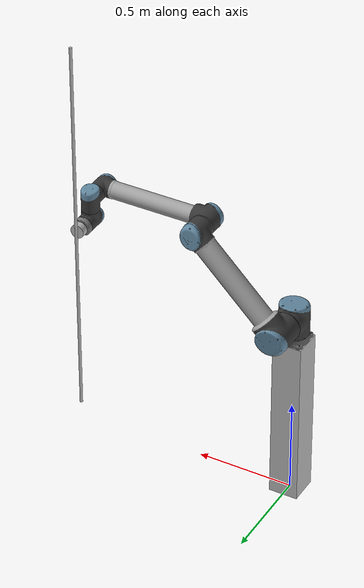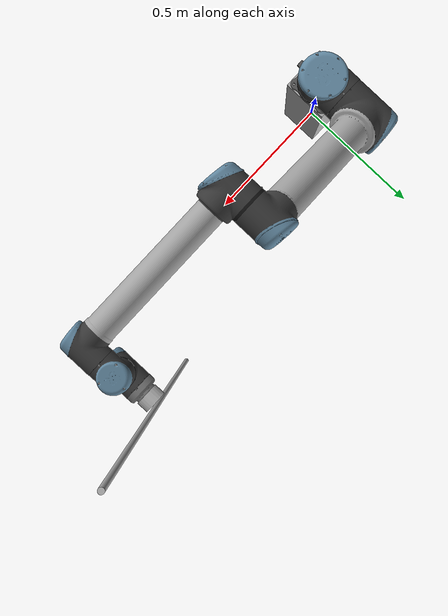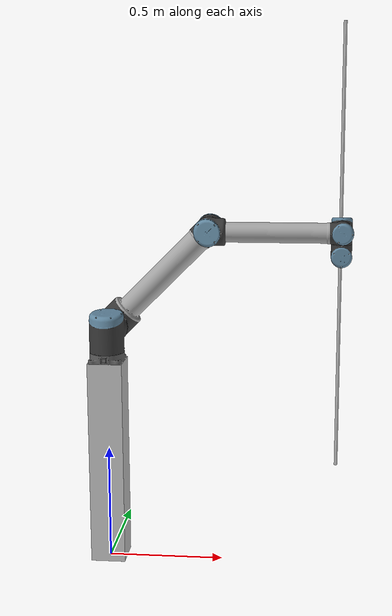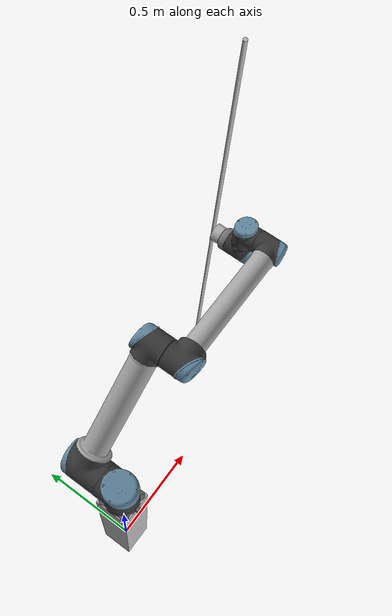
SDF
<sdf version='1.6'>
  <model name='ur10'>
    <link name='base_link'>
      <pose frame=''>0 0 0 0 -0 0</pose>
      <inertial>
        <pose frame=''>0 0 0.81 0 -0 0</pose>
        <mass>5</mass>
        <inertia>
          <ixx>1.16811</ixx>
          <ixy>0</ixy>
          <ixz>0</ixz>
          <iyy>1.16811</iyy>
          <iyz>0</iyz>
          <izz>1.01125</izz>
        </inertia>
      </inertial>
      <collision name='base_link_fixed_joint_lump__pedistal_link_collision'>
        <pose frame=''>0 0 0.45 0 -0 0</pose>
        <geometry>
          <box>
            <size>0.15 0.15 0.9</size>
          </box>
        </geometry>
      </collision>
      <collision name='base_link_fixed_joint_lump__ur10_base_link_collision_1'>
        <pose frame=''>0 0 0.9 0 -0 0</pose>
        <geometry>
          <mesh>
            <scale>1 1 1</scale>
            <uri>model://ur_description/meshes/ur10/collision/base.stl</uri>
          </mesh>
        </geometry>
        <surface>
          <contact>
            <ode/>
          </contact>
          <friction>
            <ode/>
          </friction>
        </surface>
      </collision>
      <visual name='base_link_fixed_joint_lump__pedistal_link_visual'>
        <pose frame=''>0 0 0.45 0 -0 0</pose>
        <geometry>
          <box>
            <size>0.15 0.15 0.9</size>
          </box>
        </geometry>
      </visual>
      <visual name='base_link_fixed_joint_lump__ur10_base_link_visual_1'>
        <pose frame=''>0 0 0.9 0 -0 0</pose>
        <geometry>
          <mesh>
            <scale>1 1 1</scale>
            <uri>model://ur_description/meshes/ur10/visual/base.dae</uri>
          </mesh>
        </geometry>
        <material>
          <script>
            <uri>__default__</uri>
            <name>__default__</name>
          </script>
        </material>
      </visual>
      <velocity_decay/>
      <gravity>1</gravity>
      <velocity_decay/>
      <self_collide>0</self_collide>
    </link>
    <joint name='world_joint' type='revolute'>
      <child>base_link</child>
      <parent>world</parent>
      <axis>
        <limit>
          <lower>0</lower>
          <upper>0</upper>
        </limit>
        <dynamics>
          <damping>0</damping>
          <friction>0</friction>
          <spring_reference>0</spring_reference>
          <spring_stiffness>0</spring_stiffness>
        </dynamics>
        <use_parent_model_frame>1</use_parent_model_frame>
        <xyz>0 0 1</xyz>
      </axis>
    </joint>
    <link name='shoulder_link'>
      <pose frame=''>0 0 1.0273 0 -0 0</pose>
      <inertial>
        <pose frame=''>0 0 0 0 -0 0</pose>
        <mass>7.778</mass>
        <inertia>
          <ixx>0.0314743</ixx>
          <ixy>0</ixy>
          <ixz>0</ixz>
          <iyy>0.0314743</iyy>
          <iyz>0</iyz>
          <izz>0.0218756</izz>
        </inertia>
      </inertial>
      <collision name='shoulder_link_collision'>
        <pose frame=''>0 0 0 0 -0 0</pose>
        <geometry>
          <mesh>
            <scale>1 1 1</scale>
            <uri>model://ur_description/meshes/ur10/collision/shoulder.stl</uri>
          </mesh>
        </geometry>
        <surface>
          <contact>
            <ode/>
          </contact>
          <friction>
            <ode/>
          </friction>
        </surface>
      </collision>
      <visual name='shoulder_link_visual'>
        <pose frame=''>0 0 0 0 -0 0</pose>
        <geometry>
          <mesh>
            <scale>1 1 1</scale>
            <uri>model://ur_description/meshes/ur10/visual/shoulder.dae</uri>
          </mesh>
        </geometry>
        <material>
          <script>
            <uri>__default__</uri>
            <name>__default__</name>
          </script>
        </material>
      </visual>
      <gravity>1</gravity>
      <velocity_decay/>
      <self_collide>0</self_collide>
    </link>
    <joint name='shoulder_pan_joint' type='revolute'>
      <child>shoulder_link</child>
      <parent>base_link</parent>
      <axis>
        <xyz>0 0 1</xyz>
        <limit>
          <lower>-6.28319</lower>
          <upper>6.28319</upper>
          <effort>330</effort>
          <velocity>2.16</velocity>
        </limit>
        <dynamics>
          <damping>0</damping>
          <friction>0</friction>
          <spring_reference>0</spring_reference>
          <spring_stiffness>0</spring_stiffness>
        </dynamics>
        <use_parent_model_frame>1</use_parent_model_frame>
      </axis>
    </joint>
    <link name='upper_arm_link'>
      <pose frame=''>0 0.220941 1.0273 0 0.785398 0</pose>
      <inertial>
        <pose frame=''>0 0 0.306 0 -0 0</pose>
        <mass>12.93</mass>
        <inertia>
          <ixx>0.421754</ixx>
          <ixy>0</ixy>
          <ixz>0</ixz>
          <iyy>0.421754</iyy>
          <iyz>0</iyz>
          <izz>0.0363656</izz>
        </inertia>
      </inertial>
      <collision name='upper_arm_link_collision'>
        <pose frame=''>0 0 0 0 -0 0</pose>
        <geometry>
          <mesh>
            <scale>1 1 1</scale>
            <uri>model://ur_description/meshes/ur10/collision/upperarm.stl</uri>
          </mesh>
        </geometry>
        <surface>
          <contact>
            <ode/>
          </contact>
          <friction>
            <ode/>
          </friction>
        </surface>
      </collision>
      <visual name='upper_arm_link_visual'>
        <pose frame=''>0 0 0 0 -0 0</pose>
        <geometry>
          <mesh>
            <scale>1 1 1</scale>
            <uri>model://ur_description/meshes/ur10/visual/upperarm.dae</uri>
          </mesh>
        </geometry>
        <material>
          <script>
            <uri>__default__</uri>
            <name>__default__</name>
          </script>
        </material>
      </visual>
      <gravity>1</gravity>
      <velocity_decay/>
      <self_collide>0</self_collide>
    </link>
    <joint name='shoulder_lift_joint' type='revolute'>
      <child>upper_arm_link</child>
      <parent>shoulder_link</parent>
      <axis>
        <xyz>0 1 0</xyz>
        <limit>
          <lower>-6.28319</lower>
          <upper>6.28319</upper>
          <effort>330</effort>
          <velocity>2.16</velocity>
        </limit>
        <dynamics>
          <damping>0</damping>
          <friction>0</friction>
          <spring_reference>0</spring_reference>
          <spring_stiffness>0</spring_stiffness>
        </dynamics>
        <use_parent_model_frame>1</use_parent_model_frame>
      </axis>
    </joint>
    <link name='forearm_link'>
      <pose frame=''>0.432749 0.049041 1.46005 3.14159 1.57079 3.14159</pose>
      <inertial>
        <pose frame=''>0 0 0.28615 0 -0 0</pose>
        <mass>3.87</mass>
        <inertia>
          <ixx>0.11107</ixx>
          <ixy>0</ixy>
          <ixz>0</ixz>
          <iyy>0.11107</iyy>
          <iyz>0</iyz>
          <izz>0.0108844</izz>
        </inertia>
      </inertial>
      <collision name='forearm_link_collision'>
        <pose frame=''>0 0 0 0 -0 0</pose>
        <geometry>
          <mesh>
            <scale>1 1 1</scale>
            <uri>model://ur_description/meshes/ur10/collision/forearm.stl</uri>
          </mesh>
        </geometry>
        <surface>
          <contact>
            <ode/>
          </contact>
          <friction>
            <ode/>
          </friction>
        </surface>
      </collision>
      <visual name='forearm_link_visual'>
        <pose frame=''>0 0 0 0 -0 0</pose>
        <geometry>
          <mesh>
            <scale>1 1 1</scale>
            <uri>model://ur_description/meshes/ur10/visual/forearm.dae</uri>
          </mesh>
        </geometry>
        <material>
          <script>
            <uri>__default__</uri>
            <name>__default__</name>
          </script>
        </material>
      </visual>
      <gravity>1</gravity>
      <velocity_decay/>
      <self_collide>0</self_collide>
    </link>
    <joint name='elbow_joint' type='revolute'>
      <child>forearm_link</child>
      <parent>upper_arm_link</parent>
      <axis>
        <xyz>0 1 0</xyz>
        <limit>
          <lower>-6.28319</lower>
          <upper>6.28319</upper>
          <effort>150</effort>
          <velocity>3.15</velocity>
        </limit>
        <dynamics>
          <damping>0</damping>
          <friction>0</friction>
          <spring_reference>0</spring_reference>
          <spring_stiffness>0</spring_stiffness>
        </dynamics>
        <use_parent_model_frame>1</use_parent_model_frame>
      </axis>
    </joint>
    <link name='wrist_1_link'>
      <pose frame=''>1.00505 0.049041 1.46005 3.14159 0 3.14159</pose>
      <inertial>
        <pose frame=''>0 0 0 0 -0 0</pose>
        <mass>1.96</mass>
        <inertia>
          <ixx>0.00510825</ixx>
          <ixy>0</ixy>
          <ixz>0</ixz>
          <iyy>0.00510825</iyy>
          <iyz>0</iyz>
          <izz>0.0055125</izz>
        </inertia>
      </inertial>
      <collision name='wrist_1_link_collision'>
        <pose frame=''>0 0 0 0 -0 0</pose>
        <geometry>
          <mesh>
            <scale>1 1 1</scale>
            <uri>model://ur_description/meshes/ur10/collision/wrist1.stl</uri>
          </mesh>
        </geometry>
        <surface>
          <contact>
            <ode/>
          </contact>
          <friction>
            <ode/>
          </friction>
        </surface>
      </collision>
      <visual name='wrist_1_link_visual'>
        <pose frame=''>0 0 0 0 -0 0</pose>
        <geometry>
          <mesh>
            <scale>1 1 1</scale>
            <uri>model://ur_description/meshes/ur10/visual/wrist1.dae</uri>
          </mesh>
        </geometry>
        <material>
          <script>
            <uri>__default__</uri>
            <name>__default__</name>
          </script>
        </material>
      </visual>
      <gravity>1</gravity>
      <velocity_decay/>
      <self_collide>0</self_collide>
    </link>
    <joint name='wrist_1_joint' type='revolute'>
      <child>wrist_1_link</child>
      <parent>forearm_link</parent>
      <axis>
        <xyz>0 1 0</xyz>
        <limit>
          <lower>-6.28319</lower>
          <upper>6.28319</upper>
          <effort>54</effort>
          <velocity>3.2</velocity>
        </limit>
        <dynamics>
          <damping>0</damping>
          <friction>0</friction>
          <spring_reference>0</spring_reference>
          <spring_stiffness>0</spring_stiffness>
        </dynamics>
        <use_parent_model_frame>1</use_parent_model_frame>
      </axis>
    </joint>
    <link name='wrist_2_link'>
      <pose frame=''>1.00505 0.163941 1.46005 3.14159 0 3.14159</pose>
      <inertial>
        <pose frame=''>0 0 0 0 -0 0</pose>
        <mass>1.96</mass>
        <inertia>
          <ixx>0.00510825</ixx>
          <ixy>0</ixy>
          <ixz>0</ixz>
          <iyy>0.00510825</iyy>
          <iyz>0</iyz>
          <izz>0.0055125</izz>
        </inertia>
      </inertial>
      <collision name='wrist_2_link_collision'>
        <pose frame=''>0 0 0 0 -0 0</pose>
        <geometry>
          <mesh>
            <scale>1 1 1</scale>
            <uri>model://ur_description/meshes/ur10/collision/wrist2.stl</uri>
          </mesh>
        </geometry>
        <surface>
          <contact>
            <ode/>
          </contact>
          <friction>
            <ode/>
          </friction>
        </surface>
      </collision>
      <visual name='wrist_2_link_visual'>
        <pose frame=''>0 0 0 0 -0 0</pose>
        <geometry>
          <mesh>
            <scale>1 1 1</scale>
            <uri>model://ur_description/meshes/ur10/visual/wrist2.dae</uri>
          </mesh>
        </geometry>
        <material>
          <script>
            <uri>__default__</uri>
            <name>__default__</name>
          </script>
        </material>
      </visual>
      <gravity>1</gravity>
      <velocity_decay/>
      <self_collide>0</self_collide>
    </link>
    <joint name='wrist_2_joint' type='revolute'>
      <child>wrist_2_link</child>
      <parent>wrist_1_link</parent>
      <axis>
        <xyz>0 0 -1</xyz>
        <limit>
          <lower>-6.28319</lower>
          <upper>6.28319</upper>
          <effort>54</effort>
          <velocity>3.2</velocity>
        </limit>
        <dynamics>
          <damping>0</damping>
          <friction>0</friction>
          <spring_reference>0</spring_reference>
          <spring_stiffness>0</spring_stiffness>
        </dynamics>
        <use_parent_model_frame>1</use_parent_model_frame>
      </axis>
    </joint>
    <link name='wrist_3_link'>
      <pose frame=''>1.00505 0.163941 1.34435 3.14159 0 3.14159</pose>
      <inertial>
        <pose frame=''>0 0.081196 0 0 -0 0</pose>
        <mass>0.602</mass>
        <inertia>
          <ixx>0.0693597</ixx>
          <ixy>-1.11445e-12</ixy>
          <ixz>1.46338e-26</ixz>
          <iyy>0.0672265</iyy>
          <iyz>8.14352e-18</iyz>
          <izz>0.0027375</izz>
        </inertia>
      </inertial>
      <collision name='wrist_3_link_collision'>
        <pose frame=''>0 0 0 0 -0 0</pose>
        <geometry>
          <mesh>
            <scale>1 1 1</scale>
            <uri>model://ur_description/meshes/ur10/collision/wrist3.stl</uri>
          </mesh>
        </geometry>
        <surface>
          <contact>
            <ode>
              <kp>7000</kp>
              <kd>1</kd>
            </ode>
          </contact>
          <friction>
            <ode>
              <mu>0.5</mu>
              <mu2>0.5</mu2>
            </ode>
          </friction>
        </surface>
      </collision>
      <collision name='wrist_3_link_fixed_joint_lump__ee_link_collision_1'>
        <pose frame=''>-0 0.0822 0 0 -0 1.5708</pose>
        <geometry>
          <box>
            <size>0.01 0.01 0.01</size>
          </box>
        </geometry>
        <surface>
          <contact>
            <ode>
              <kp>7000</kp>
              <kd>1</kd>
            </ode>
          </contact>
          <friction>
            <ode>
              <mu>0.5</mu>
              <mu2>0.5</mu2>
            </ode>
          </friction>
        </surface>
      </collision>
      <collision name='wrist_3_link_fixed_joint_lump__forcesensor_link_collision_2'>
        <pose frame=''>0 0.1097 0 3.14159 1.57079 -1.57079</pose>
        <geometry>
          <cylinder>
            <length>0.07</length>
            <radius>0.0175</radius>
          </cylinder>
        </geometry>
        <surface>
          <contact>
            <ode>
              <kp>7000</kp>
              <kd>1</kd>
            </ode>
          </contact>
          <friction>
            <ode>
              <mu>0.5</mu>
              <mu2>0.5</mu2>
            </ode>
          </friction>
        </surface>
      </collision>
      <collision name='wrist_3_link_fixed_joint_lump__bolt_link_collision_3'>
        <pose frame=''>0 0.1347 0 3.14159 0 -1.5708</pose>
        <geometry>
          <cylinder>
            <length>2</length>
            <radius>0.0075</radius>
          </cylinder>
        </geometry>
        <surface>
          <contact>
            <ode>
              <kp>7000</kp>
              <kd>1</kd>
            </ode>
          </contact>
          <friction>
            <ode>
              <mu>0.5</mu>
              <mu2>0.5</mu2>
            </ode>
          </friction>
        </surface>
      </collision>
      <visual name='wrist_3_link_visual'>
        <pose frame=''>0 0 0 0 -0 0</pose>
        <geometry>
          <mesh>
            <scale>1 1 1</scale>
            <uri>model://ur_description/meshes/ur10/visual/wrist3.dae</uri>
          </mesh>
        </geometry>
        <material>
          <script>
            <uri>__default__</uri>
            <name>__default__</name>
          </script>
        </material>
      </visual>
      <visual name='wrist_3_link_fixed_joint_lump__forcesensor_link_visual_1'>
        <pose frame=''>0 0.1097 0 3.14159 1.57079 -1.57079</pose>
        <geometry>
          <cylinder>
            <length>0.035</length>
            <radius>0.035</radius>
          </cylinder>
        </geometry>
        <material>
          <script>
            <uri>__default__</uri>
            <name>__default__</name>
          </script>
        </material>
      </visual>
      <visual name='wrist_3_link_fixed_joint_lump__bolt_link_visual_2'>
        <pose frame=''>0 0.1347 0 3.14159 0 -1.5708</pose>
        <geometry>
          <cylinder>
            <length>2</length>
            <radius>0.0075</radius>
          </cylinder>
        </geometry>
        <material>
          <script>
            <uri>__default__</uri>
            <name>__default__</name>
          </script>
        </material>
      </visual>
      <velocity_decay/>
      <velocity_decay/>
      <velocity_decay/>
      <sensor name='forcesensor_link_contact_sensor' type='contact'>
        <always_on>1</always_on>
        <update_rate>1000</update_rate>
        <contact>
          <topic>/contact_forces</topic>
          <collision>ee_link_collision_forcesensor_link</collision>
        </contact>
        <plugin name='forcesensor_link_bumper' filename='libreload_contact_sensor_plugin.so'>
          <robotNamespace>/</robotNamespace>
          <bumperTopicName>/impedance_controller/contact_forces</bumperTopicName>
          <frameName>forcesensor_link</frameName>
        </plugin>
        <pose frame=''>0 0.1097 0 3.14159 1.57079 -1.57079</pose>
      </sensor>
      <gravity>1</gravity>
      <velocity_decay/>
      <self_collide>1</self_collide>
    </link>
    <joint name='wrist_3_joint' type='revolute'>
      <child>wrist_3_link</child>
      <parent>wrist_2_link</parent>
      <axis>
        <xyz>0 1 0</xyz>
        <limit>
          <lower>-6.28319</lower>
          <upper>6.28319</upper>
          <effort>54</effort>
          <velocity>3.2</velocity>
        </limit>
        <dynamics>
          <damping>0</damping>
          <friction>0</friction>
          <spring_reference>0</spring_reference>
          <spring_stiffness>0</spring_stiffness>
        </dynamics>
        <use_parent_model_frame>1</use_parent_model_frame>
      </axis>
    </joint>
    <static>0</static>
    <plugin name='ros_control' filename='libgazebo_ros_control.so'/>
  </model>
</sdf>
